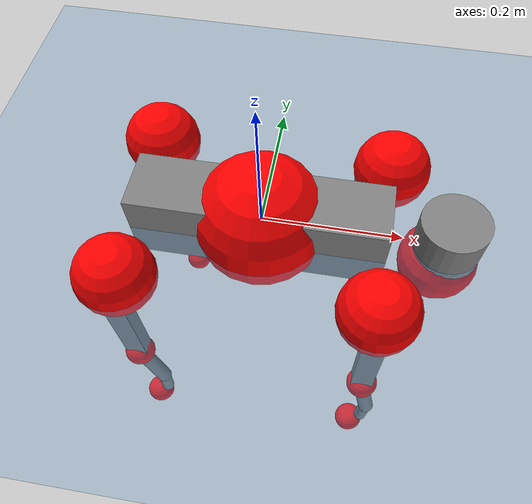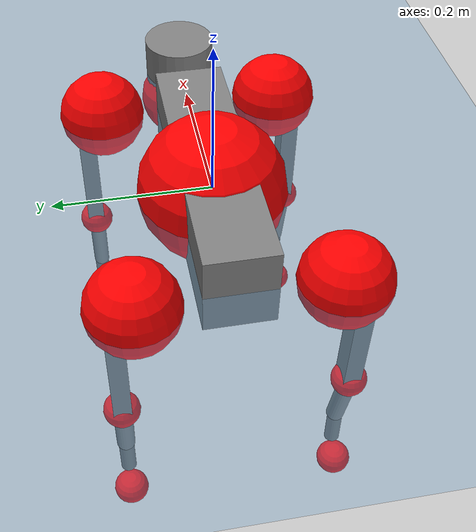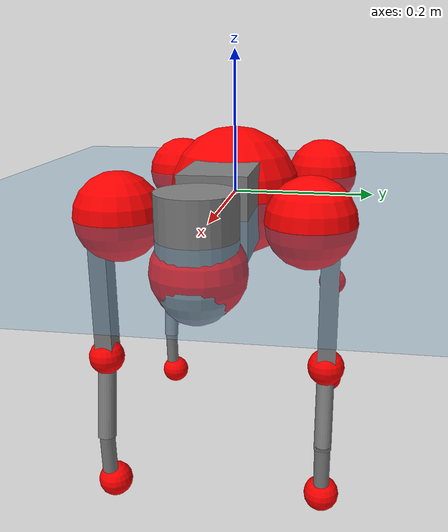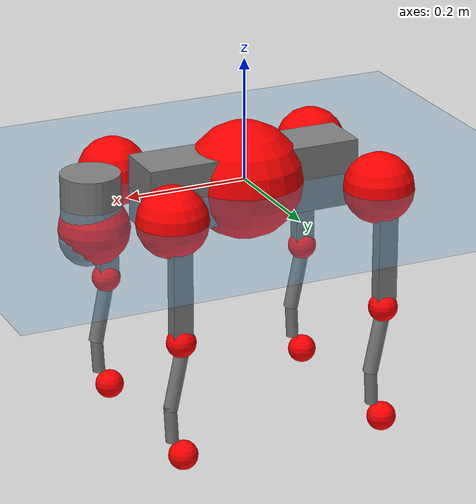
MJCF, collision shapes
<mujoco model="go2">
  <compiler angle="radian" assetdir="assets" balanceinertia="true" inertiafromgeom="false"/>

  <option timestep="0.005" density="1.2" viscosity="2e-05"/>

  <size nkey="1"/>

  <visual>
    <quality shadowsize="8192"/>
    <map shadowclip="0.5"/>
  </visual>

  <default>
    <default class="/">
      <geom contype="0" conaffinity="0" group="1" solref="-1000 -80"/>
      <site size="0.01 0.005 0.005" group="5"/>
      <general forcelimited="true" biastype="affine" gainprm="20" biasprm="0 -20 -0.5"/>
      <default class="go2">
        <joint armature="0.01" damping="0.01" frictionloss="0.2"/>
        <geom condim="1" margin="0.001"/>
        <default class="visual">
          <geom type="mesh" group="2"/>
        </default>
        <default class="collision">
          <geom group="3"/>
          <default class="foot">
            <geom size="0.022 0 0" condim="6" priority="1" friction="0.8 0.02 0.01" solimp="0.015 1 0.022"/>
          </default>
        </default>
        <default class="reward_collision_sphere">
          <geom group="5" rgba="1 0 0 1"/>
        </default>
      </default>
    </default>
  </default>

  <asset>
    <texture type="skybox" colorspace="auto" name="//unnamed_texture_0" builtin="gradient" rgb1="0.95 0.95 0.95" rgb2="0.95 0.95 0.95" width="100" height="600"/>
    <texture type="2d" colorspace="auto" name="texplane" builtin="checker" rgb1="0.345 0.575 0.748" rgb2="0.345 0.575 0.748" markrgb="1 1 1" width="512" height="512"/>
    <material name="MatPlane" class="/" texture="texplane" texuniform="true" texrepeat="2 2" specular="0.9"/>
    <material name="metal" class="/" rgba="0.9 0.95 0.95 1"/>
    <material name="black" class="/" rgba="0 0 0 1"/>
    <material name="white" class="/"/>
    <material name="gray" class="/" rgba="0.671705 0.692426 0.77427 1"/>
    <mesh name="base_0" class="/" file="base_0.obj"/>
    <mesh name="base_1" class="/" file="base_1.obj"/>
    <mesh name="base_2" class="/" file="base_2.obj"/>
    <mesh name="base_3" class="/" file="base_3.obj"/>
    <mesh name="base_4" class="/" file="base_4.obj"/>
    <mesh name="hip_0" class="/" file="hip_0.obj"/>
    <mesh name="hip_1" class="/" file="hip_1.obj"/>
    <mesh name="thigh_0" class="/" file="thigh_0.obj"/>
    <mesh name="thigh_1" class="/" file="thigh_1.obj"/>
    <mesh name="thigh_mirror_0" class="/" file="thigh_mirror_0.obj"/>
    <mesh name="thigh_mirror_1" class="/" file="thigh_mirror_1.obj"/>
    <mesh name="calf_0" class="/" file="calf_0.obj"/>
    <mesh name="calf_1" class="/" file="calf_1.obj"/>
    <mesh name="calf_mirror_0" class="/" file="calf_mirror_0.obj"/>
    <mesh name="calf_mirror_1" class="/" file="calf_mirror_1.obj"/>
    <mesh name="foot" class="/" file="foot.obj"/>
  </asset>

  <worldbody>
    <geom name="floor" class="/" size="100 100 0.125" type="plane" group="0" material="MatPlane"/>
    <light name="toplight_shadow" class="/" pos="0 0 5" dir="0.0990148 0.0990148 -0.990148" type="directional" ambient="0.04 0.04 0.04" diffuse="0.55 0.55 0.55" specular="0.12 0.12 0.12"/>
    <light name="toplight_fill" class="/" pos="0 0 5" dir="0.0990148 0.0990148 -0.990148" type="directional" castshadow="false" ambient="0.04 0.04 0.04" diffuse="0.3 0.3 0.3" specular="0.08 0.08 0.08"/>
    <body name="trunk" childclass="go2" pos="8.13092e-05 7.29697e-05 -0.000383209" quat="1 6.46225e-05 -9.63383e-06 2.90363e-05">
      <inertial pos="0.019592 0.00179075 -0.00398587" quat="-0.000585397 0.713448 -0.00175368 0.700706" mass="6.01193" diaginertia="0.0704446 0.11694 0.0151906"/>
      <joint name="//unnamed_joint_0" type="free" armature="0" damping="0" frictionloss="0"/>
      <geom name="//unnamed_geom_1" class="visual" material="black" mesh="base_0"/>
      <geom name="//unnamed_geom_2" class="visual" material="black" mesh="base_1"/>
      <geom name="//unnamed_geom_3" class="visual" material="black" mesh="base_2"/>
      <geom name="//unnamed_geom_4" class="visual" material="white" mesh="base_3"/>
      <geom name="//unnamed_geom_5" class="visual" material="gray" mesh="base_4"/>
      <geom name="trunk_1" class="collision" size="0.178988 0.0444852 0.0542387" type="box"/>
      <geom name="trunk_2" class="collision" size="0.0475778 0.04282" pos="0.26067 0 0.0090748" type="cylinder"/>
      <geom name="trunk_3" class="collision" size="0.0447231" pos="0.267988 0 -0.0544488"/>
      <geom name="//unnamed_geom_9" class="reward_collision_sphere" size="0.0951556"/>
      <geom name="//unnamed_geom_10" class="reward_collision_sphere" size="0.0570934" pos="0.256097 0 -0.0408366"/>
      <site name="imu" pos="-0.0283466 0.00284973 0.0332857" size="0.00951556"/>
      <camera name="track" pos="0 -2.06511 0" quat="0.707107 0.707107 0 0" mode="trackcom"/>
      <camera name="ego_camera" pos="0.285366 0 0.0408366" quat="-0.5 -0.5 0.5 0.5"/>
      <body name="FL_hip" pos="0.17572 0.0486065 0.000278761" quat="1 -3.40615e-05 -0.000168058 -7.60648e-05">
        <inertial pos="-0.00621381 0.00212546 0.000479625" quat="0.496688 0.500586 0.505499 0.497177" mass="0.594852" diaginertia="0.000570979 0.000712443 0.000296669"/>
        <joint name="FL_hip_joint" pos="0 0 0" axis="0.999994 -0.00201313 0.00294003" stiffness="0.00205861" range="-1.02886 1.04625" armature="0.00938826" damping="0.00274496" frictionloss="0.178874"/>
        <geom name="//unnamed_geom_11" class="visual" material="metal" mesh="hip_0"/>
        <geom name="//unnamed_geom_12" class="visual" material="gray" mesh="hip_1"/>
        <geom name="//unnamed_geom_13" class="collision" size="0.0437716 0.0190311" pos="0 0.0826044 0" quat="0.707107 0.707107 0 0" type="cylinder"/>
        <geom name="//unnamed_geom_14" class="reward_collision_sphere" size="0.0570934" pos="0 0.0722789 0"/>
        <body name="FL_thigh" pos="-0.000998737 0.0979122 0.00182562" quat="1 2.52945e-06 -0.000110195 0.000147637">
          <inertial pos="-0.00344405 -0.0229821 -0.0289227" quat="0.829486 0.0846351 -0.0202434 0.551707" mass="0.965904" diaginertia="0.00382139 0.00679143 0.000515437"/>
          <joint name="FL_thigh_joint" pos="0 0 0" axis="0.00144193 0.999998 0.0011051" stiffness="0.00688621" range="-1.56656 3.47307" armature="0.00936208" damping="0.0039933" frictionloss="0.19547"/>
          <geom name="//unnamed_geom_15" class="visual" material="metal" mesh="thigh_0"/>
          <geom name="//unnamed_geom_16" class="visual" material="gray" mesh="thigh_1"/>
          <geom name="//unnamed_geom_17" class="collision" size="0.101341 0.0116566 0.0161765" pos="0 0 -0.0966466" quat="0.707107 0 0.707107 0" type="box"/>
          <body name="FL_calf" pos="-0.000551071 -0.000524532 -0.192492" quat="1 0.00078682 -0.000366597 -0.000431262">
            <inertial pos="0.00533717 -0.000549956 -0.127861" quat="0.710693 0.00204709 -0.00456702 0.703484" mass="0.208984" diaginertia="0.000955324 0.00168576 3.2621e-05"/>
            <joint name="FL_calf_joint" pos="0 0 0" axis="-0.00216611 0.999978 -0.00633585" stiffness="0.00127709" range="-2.71364 -0.839936" armature="0.00990073" damping="0.00525631" frictionloss="0.186642"/>
            <geom name="//unnamed_geom_18" class="visual" material="gray" mesh="calf_0"/>
            <geom name="//unnamed_geom_19" class="visual" material="black" mesh="calf_1"/>
            <geom name="FL_calf0" class="collision" size="0.0114187 0.0570934" pos="0.00731707 0 -0.0544488" quat="0.994493 0 -0.104807 0" type="cylinder"/>
            <geom name="//unnamed_geom_21" class="collision" size="0.0104671 0.0309256" pos="0.0182927 0 -0.134307" quat="0.999688 0 0.0249974 0" type="cylinder"/>
            <geom name="//unnamed_geom_22" class="visual" pos="0 0 -0.193293" quat="1 0 0 0" material="black" mesh="foot"/>
            <geom name="FL_foot" class="foot" size="0.0184216" pos="-0.00182927 0 -0.193293"/>
            <geom name="//unnamed_geom_24" class="reward_collision_sphere" size="0.0237889"/>
            <geom name="//unnamed_geom_25" class="reward_collision_sphere" size="0.0237889" pos="-0.00182927 0 -0.193293"/>
            <site name="FL_foot" class="foot" pos="-0.00182927 0 -0.193293" size="0.00951556"/>
          </body>
        </body>
      </body>
      <body name="FR_hip" pos="0.176289 -0.046939 -0.000131088" quat="1 -0.000242423 0.000151681 0.000308453">
        <inertial pos="-0.00469457 -0.0015133 -0.000285664" quat="0.498258 0.505455 0.499222 0.497023" mass="0.565936" diaginertia="0.000551289 0.000691972 0.000295434"/>
        <joint name="FR_hip_joint" pos="0 0 0" axis="0.999994 0.0030955 -0.00145992" range="-1.03218 1.01191" armature="0.00965095" damping="0.0101057" frictionloss="0.191259"/>
        <geom name="//unnamed_geom_26" class="visual" pos="0 1.08961e-09 4.67356e-08" quat="4.63268e-05 1 0 0" material="metal" mesh="hip_0"/>
        <geom name="//unnamed_geom_27" class="visual" pos="0 1.76639e-09 -1.15595e-07" quat="4.63268e-05 1 0 0" material="gray" mesh="hip_1"/>
        <geom name="//unnamed_geom_28" class="collision" size="0.0437716 0.0190311" pos="0 -0.0826044 0" quat="0.707107 0.707107 0 0" type="cylinder"/>
        <geom name="//unnamed_geom_29" class="reward_collision_sphere" size="0.0570934" pos="0 -0.0722789 0"/>
        <body name="FR_thigh" pos="0.00262744 -0.0980339 0.000494564" quat="1 0.000282016 -0.000138039 -0.000416365">
          <inertial pos="-0.00293712 0.0227769 -0.0296789" quat="0.551492 -0.0201786 0.0842167 0.829673" mass="1.03104" diaginertia="0.0038272 0.00713832 0.000555737"/>
          <joint name="FR_thigh_joint" pos="0 0 0" axis="-0.00608588 -0.99996 0.00662046" range="-3.44452 1.53177" armature="0.00936367" damping="0.00375808" frictionloss="0.194198"/>
          <geom name="//unnamed_geom_30" class="visual" material="metal" mesh="thigh_mirror_0"/>
          <geom name="//unnamed_geom_31" class="visual" material="gray" mesh="thigh_mirror_1"/>
          <geom name="//unnamed_geom_32" class="collision" size="0.101341 0.0116566 0.0161765" pos="0 0 -0.0966466" quat="0.707107 0 0.707107 0" type="box"/>
          <body name="FR_calf" pos="0.00170196 -0.00112876 -0.193535" quat="1 2.06018e-05 -7.70009e-05 1.61617e-05">
            <inertial pos="0.00664188 0.00114552 -0.126495" quat="0.70378 -0.0019318 -0.00152844 0.710414" mass="0.2022" diaginertia="0.000951518 0.00172661 3.2881e-05"/>
            <joint name="FR_calf_joint" pos="0 0 0" axis="-0.000264766 -0.999944 0.0105324" stiffness="0.0024811" range="0.821962 2.69745" armature="0.00950662" damping="0.0155915" frictionloss="0.168273"/>
            <geom name="//unnamed_geom_33" class="visual" material="gray" mesh="calf_mirror_0"/>
            <geom name="//unnamed_geom_34" class="visual" material="black" mesh="calf_mirror_1"/>
            <geom name="FR_calf0" class="collision" size="0.0123702 0.0570934" pos="0.00914633 0 -0.0544488" quat="0.995004 0 -0.0998334 0" type="cylinder"/>
            <geom name="//unnamed_geom_36" class="collision" size="0.0104671 0.0309256" pos="0.0182927 0 -0.134307" quat="0.999688 0 0.0249974 0" type="cylinder"/>
            <geom name="//unnamed_geom_37" class="visual" pos="0 0 -0.193293" quat="1 0 0 0" material="black" mesh="foot"/>
            <geom name="FR_foot" class="foot" size="0.022225" pos="-0.00182927 0 -0.193293"/>
            <geom name="//unnamed_geom_39" class="reward_collision_sphere" size="0.0237889"/>
            <geom name="//unnamed_geom_40" class="reward_collision_sphere" size="0.0237889" pos="-0.00182927 0 -0.193293"/>
            <site name="FR_foot" class="foot" pos="-0.00182927 0 -0.193293" size="0.00951556"/>
          </body>
        </body>
      </body>
      <body name="RL_hip" pos="-0.176481 0.0493618 -0.000583021" quat="1 3.89131e-05 5.7571e-05 1.02394e-05">
        <inertial pos="0.00566556 0.0011327 -0.000114379" quat="0.508847 0.48866 0.503505 0.498767" mass="0.567157" diaginertia="0.000559232 0.000700045 0.000299072"/>
        <joint name="RL_hip_joint" pos="0 0 0" axis="-0.999862 -0.00183117 0.016483" range="-1.05468 1.06105" armature="0.00948774" damping="0.0113954" frictionloss="0.183461"/>
        <geom name="//unnamed_geom_41" class="visual" pos="-6.23202e-11 0 -1.22162e-08" quat="4.63268e-05 0 1 0" material="metal" mesh="hip_0"/>
        <geom name="//unnamed_geom_42" class="visual" pos="-1.01028e-10 0 -1.0834e-08" quat="4.63268e-05 0 1 0" material="gray" mesh="hip_1"/>
        <geom name="//unnamed_geom_43" class="collision" size="0.0437716 0.0190311" pos="0 0.0826044 0" quat="0.707107 0.707107 0 0" type="cylinder"/>
        <geom name="//unnamed_geom_44" class="reward_collision_sphere" size="0.0570934" pos="0 0.0722789 0"/>
        <body name="RL_thigh" pos="-0.00011959 0.0973102 -0.000761108" quat="1 -5.22064e-06 0.000181743 0.000235884">
          <inertial pos="-0.00238967 -0.0230891 -0.0297824" quat="0.830763 0.0847365 -0.0153849 0.549923" mass="1.00256" diaginertia="0.00389459 0.00706483 0.000547881"/>
          <joint name="RL_thigh_joint" pos="0 0 0" axis="-0.00737366 0.999963 0.00441588" range="-0.520254 4.54105" armature="0.00951038" damping="0.00919083" frictionloss="0.188873"/>
          <geom name="//unnamed_geom_45" class="visual" material="metal" mesh="thigh_0"/>
          <geom name="//unnamed_geom_46" class="visual" material="gray" mesh="thigh_1"/>
          <geom name="//unnamed_geom_47" class="collision" size="0.101341 0.0116566 0.0161765" pos="0 0 -0.0966466" quat="0.707107 0 0.707107 0" type="box"/>
          <body name="RL_calf" pos="0.00135436 1.57091e-05 -0.193422" quat="1 -0.000134066 -0.000631362 -2.91504e-05">
            <inertial pos="0.00655079 0.000365728 -0.128548" quat="0.710662 0.00130556 -0.00447096 0.703518" mass="0.210029" diaginertia="0.00099361 0.00180845 3.4704e-05"/>
            <joint name="RL_calf_joint" pos="0 0 0" axis="-0.00867076 0.999902 0.0109826" range="-2.71828 -0.885153" armature="0.00935712" damping="0" frictionloss="0.182635"/>
            <geom name="//unnamed_geom_48" class="visual" material="gray" mesh="calf_0"/>
            <geom name="//unnamed_geom_49" class="visual" material="black" mesh="calf_1"/>
            <geom name="RL_calf0" class="collision" size="0.0123702 0.0570934" pos="0.00914633 0 -0.0544488" quat="0.995004 0 -0.0998334 0" type="cylinder"/>
            <geom name="//unnamed_geom_51" class="collision" size="0.0104671 0.0309256" pos="0.0182927 0 -0.134307" quat="0.999688 0 0.0249974 0" type="cylinder"/>
            <geom name="//unnamed_geom_52" class="visual" pos="0 0 -0.193293" quat="1 0 0 0" material="black" mesh="foot"/>
            <geom name="RL_foot" class="foot" size="0.0166591" pos="-0.00182927 0 -0.193293"/>
            <geom name="//unnamed_geom_54" class="reward_collision_sphere" size="0.0237889"/>
            <geom name="//unnamed_geom_55" class="reward_collision_sphere" size="0.0237889" pos="-0.00182927 0 -0.193293"/>
            <site name="RL_foot" class="foot" pos="-0.00182927 0 -0.193293" size="0.00951556"/>
          </body>
        </body>
      </body>
      <body name="RR_hip" pos="-0.176715 -0.0487893 -0.00241029" quat="1 -0.000149092 0.000464408 -0.000640761">
        <inertial pos="0.0045904 -0.00280169 0.000920535" quat="0.501854 0.493808 0.490778 0.513258" mass="0.589103" diaginertia="0.000564466 0.000706406 0.000295928"/>
        <joint name="RR_hip_joint" pos="0 0 0" axis="-0.999978 -0.00379368 -0.00544952" stiffness="0.00216312" range="-1.07339 1.04115" armature="0.00873927" damping="0.0125843" frictionloss="0.188578"/>
        <geom name="//unnamed_geom_56" class="visual" pos="6.64026e-11 1.08961e-09 -5.89518e-08" quat="2.14617e-09 4.63268e-05 4.63268e-05 -1" material="metal" mesh="hip_0"/>
        <geom name="//unnamed_geom_57" class="visual" pos="9.09306e-11 1.76639e-09 1.04761e-07" quat="2.14617e-09 4.63268e-05 4.63268e-05 -1" material="gray" mesh="hip_1"/>
        <geom name="//unnamed_geom_58" class="collision" size="0.0437716 0.0190311" pos="0 -0.0826044 0" quat="0.707107 0.707107 0 0" type="cylinder"/>
        <geom name="//unnamed_geom_59" class="reward_collision_sphere" size="0.0570934" pos="0 -0.0722789 0"/>
        <body name="RR_thigh" pos="-0.000209538 -0.0988173 -0.00321959" quat="1 0.000247606 -4.83132e-05 0.000146403">
          <inertial pos="-0.00322604 0.0254791 -0.0302435" quat="0.550559 -0.0213753 0.080759 0.830606" mass="0.96096" diaginertia="0.00368313 0.00667891 0.000521369"/>
          <joint name="RR_thigh_joint" pos="0 0 0" axis="-0.00551777 -0.999979 0.0034997" stiffness="4.43367e-05" range="-4.55891 0.486892" armature="0.0107284" damping="0.0152351" frictionloss="0.181795"/>
          <geom name="//unnamed_geom_60" class="visual" material="metal" mesh="thigh_mirror_0"/>
          <geom name="//unnamed_geom_61" class="visual" material="gray" mesh="thigh_mirror_1"/>
          <geom name="//unnamed_geom_62" class="collision" size="0.101341 0.0116566 0.0161765" pos="0 0 -0.0966466" quat="0.707107 0 0.707107 0" type="box"/>
          <body name="RR_calf" pos="-0.000348741 -0.00164803 -0.193455" quat="1 0.000124877 -0.000355703 0.00015871">
            <inertial pos="0.00471001 0.000983909 -0.128204" quat="0.700799 -0.00283145 -0.00808034 0.713308" mass="0.205421" diaginertia="0.000962535 0.00175318 3.39944e-05"/>
            <joint name="RR_calf_joint" pos="0 0 0" axis="0.00164432 -0.999994 -0.00303326" stiffness="0.00673584" range="0.858559 2.75783" armature="0.00945375" damping="0.012057" frictionloss="0.193555"/>
            <geom name="//unnamed_geom_63" class="visual" material="gray" mesh="calf_mirror_0"/>
            <geom name="//unnamed_geom_64" class="visual" material="black" mesh="calf_mirror_1"/>
            <geom name="RR_calf0" class="collision" size="0.0123702 0.0570934" pos="0.00914633 0 -0.0544488" quat="0.995004 0 -0.0998334 0" type="cylinder"/>
            <geom name="//unnamed_geom_66" class="collision" size="0.0104671 0.0309256" pos="0.0182927 0 -0.134307" quat="0.999688 0 0.0249974 0" type="cylinder"/>
            <geom name="//unnamed_geom_67" class="visual" pos="0 0 -0.193293" quat="1 0 0 0" material="black" mesh="foot"/>
            <geom name="RR_foot" class="foot" size="0.020876" pos="-0.00182927 0 -0.193293"/>
            <geom name="//unnamed_geom_69" class="reward_collision_sphere" size="0.0237889"/>
            <geom name="//unnamed_geom_70" class="reward_collision_sphere" size="0.0237889" pos="-0.00182927 0 -0.193293"/>
            <site name="RR_foot" class="foot" pos="-0.00182927 0 -0.193293" size="0.00951556"/>
          </body>
        </body>
      </body>
    </body>
  </worldbody>

  <contact>
    <pair class="/" geom1="floor" geom2="FL_foot" name="//unnamed_contact_0"/>
    <pair class="/" geom1="floor" geom2="FR_foot" name="//unnamed_contact_1"/>
    <pair class="/" geom1="floor" geom2="RL_foot" name="//unnamed_contact_2"/>
    <pair class="/" geom1="floor" geom2="RR_foot" name="//unnamed_contact_3"/>
  </contact>

  <actuator>
    <general name="FL_hip" class="/" joint="FL_hip_joint" forcerange="-22.9097 22.9097" gainprm="20.0687" biasprm="0 -20.0687 -0.463975"/>
    <general name="FL_thigh" class="/" joint="FL_thigh_joint" forcerange="-20.6556 20.6556" gainprm="20.0687" biasprm="0 -20.0687 -0.463975"/>
    <general name="FL_calf" class="/" joint="FL_calf_joint" forcerange="-41.9302 41.9302" gainprm="20.0687" biasprm="0 -20.0687 -0.463975"/>
    <general name="FR_hip" class="/" joint="FR_hip_joint" forcerange="-23.1513 23.1513" gainprm="20.0687" biasprm="0 -20.0687 -0.463975"/>
    <general name="FR_thigh" class="/" joint="FR_thigh_joint" forcerange="-21.6047 21.6047" gainprm="20.0687" biasprm="0 -20.0687 -0.463975"/>
    <general name="FR_calf" class="/" joint="FR_calf_joint" forcerange="-44.504 44.504" gainprm="20.0687" biasprm="0 -20.0687 -0.463975"/>
    <general name="RL_hip" class="/" joint="RL_hip_joint" forcerange="-22.6395 22.6395" gainprm="20.0687" biasprm="0 -20.0687 -0.463975"/>
    <general name="RL_thigh" class="/" joint="RL_thigh_joint" forcerange="-22.6083 22.6083" gainprm="20.0687" biasprm="0 -20.0687 -0.463975"/>
    <general name="RL_calf" class="/" joint="RL_calf_joint" forcerange="-44.351 44.351" gainprm="20.0687" biasprm="0 -20.0687 -0.463975"/>
    <general name="RR_hip" class="/" joint="RR_hip_joint" forcerange="-20.6542 20.6542" gainprm="20.0687" biasprm="0 -20.0687 -0.463975"/>
    <general name="RR_thigh" class="/" joint="RR_thigh_joint" forcerange="-22.473 22.473" gainprm="20.0687" biasprm="0 -20.0687 -0.463975"/>
    <general name="RR_calf" class="/" joint="RR_calf_joint" forcerange="-43.1295 43.1295" gainprm="20.0687" biasprm="0 -20.0687 -0.463975"/>
  </actuator>

  <sensor>
    <gyro site="imu" name="imu_angular_velocity"/>
    <velocimeter site="imu" name="imu_linear_velocity"/>
    <framelinvel objtype="site" objname="FL_foot" name="FL_foot_global_linear_velocity"/>
    <framelinvel objtype="site" objname="FR_foot" name="FR_foot_global_linear_velocity"/>
    <framelinvel objtype="site" objname="RL_foot" name="RL_foot_global_linear_velocity"/>
    <framelinvel objtype="site" objname="RR_foot" name="RR_foot_global_linear_velocity"/>
  </sensor>

  <keyframe>
    <key name="home" qpos="0 0 0.325 1 0 0 0 0.1 0.8 -1.5 -0.1 -0.8 1.5 -0.1 0.8 -1.5 0.1 -0.8 1.5"/>
  </keyframe>
</mujoco>
